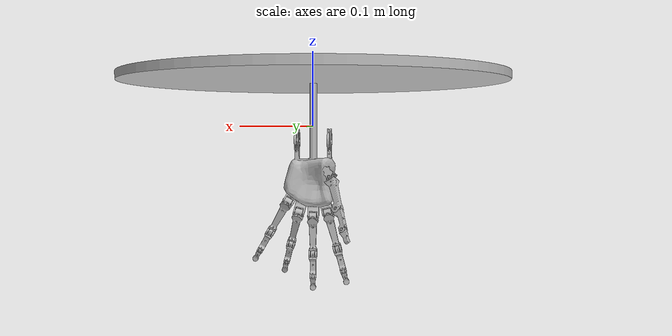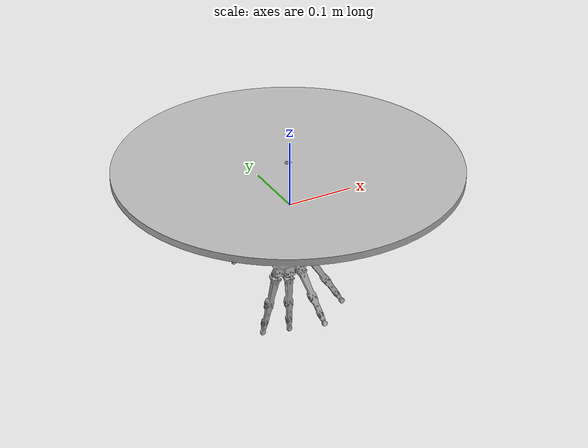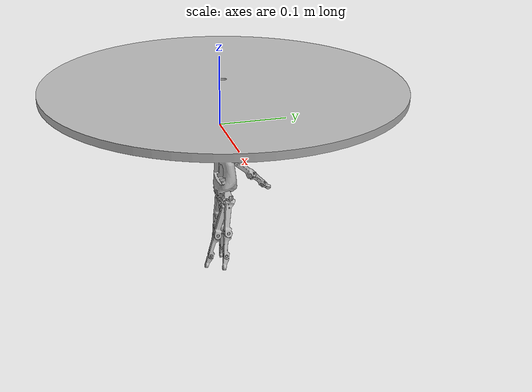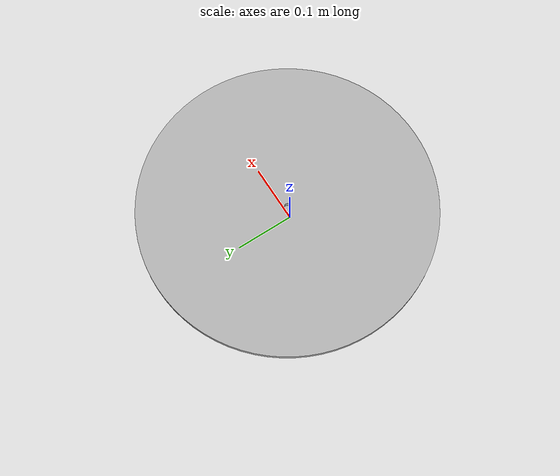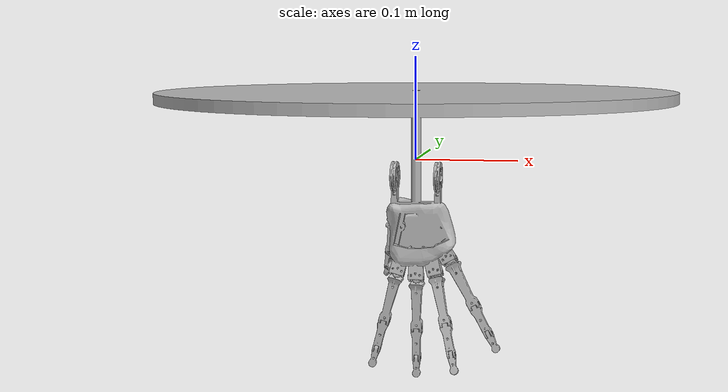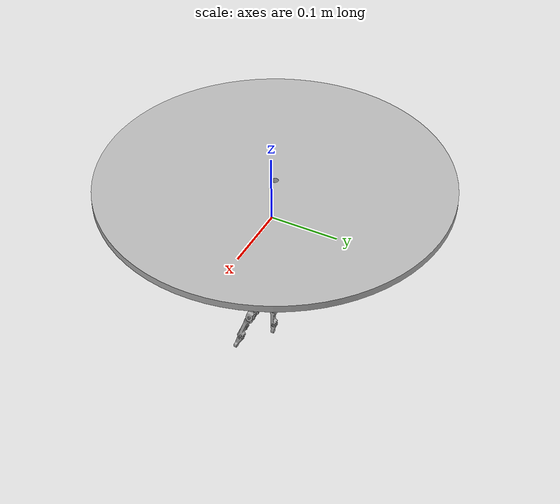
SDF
<?xml version="1.0" ?>
<sdf version="1.6">
	<model name="roboy_hand_left">
		<link name="palm">
			<pose frame="">-0.0005000000000004635 0.00500000000000008 0.06701500000000059 0.0 -0.0 0.0</pose>
			<inertial>
				<pose frame="">0.0 0.0 0.05 0 0 0</pose>
				<mass>15.51996490789225</mass>
				<inertia>
					<ixx>0.3009526854219939</ixx>
					<ixy>3.875011271603236e-05</ixy>
					<ixz>-0.004755703604050438</ixz>
					<iyy>0.30058453511478506</iyy>
					<iyz>0.000483734858635136</iyz>
					<izz>0.4820856721425655</izz>
				</inertia>
			</inertial>
			<collision name="palm_collision">
				<geometry>
					<box>
						<size>0.01 0.01 0.01</size>
					</box>
				</geometry>
			</collision>
			<visual name="palm_visual">
				<geometry>
					<mesh>
						<uri>model://roboy_hand_left/meshes/CAD/palm.stl</uri>
						<scale>0.001 0.001 0.001</scale>
					</mesh>
				</geometry>
			</visual>
		</link>
		<link name="ring_limb0">
			<pose frame="">0.018472005363350263 0.003071637170940513 -0.11378948793749274 0.0 -0.0 0.0</pose>
			<inertial>
				<pose frame="">0.0 0.0 0.0 0 0 0</pose>
				<mass>0.0004269863688298119</mass>
				<inertia>
					<ixx>5.705186481949896e-06</ixx>
					<ixy>-4.324087879365974e-08</ixy>
					<ixz>2.6419370768032266e-07</ixz>
					<iyy>5.847829902048446e-06</iyy>
					<iyz>9.311486939256469e-07</iyz>
					<izz>1.7250855397973193e-07</izz>
				</inertia>
			</inertial>
			<collision name="ring_limb0_collision">
				<geometry>
					<box>
						<size>0.01 0.01 0.01</size>
					</box>
				</geometry>
			</collision>
			<visual name="ring_limb0_visual">
				<geometry>
					<mesh>
						<uri>model://roboy_hand_left/meshes/CAD/ring_limb0.stl</uri>
						<scale>0.001 0.001 0.001</scale>
					</mesh>
				</geometry>
			</visual>
		</link>
		<link name="ring_limb1">
			<pose frame="">0.02221748182250485 -0.0046803127482647755 -0.12776779638161082 0.0 -0.0 0.0</pose>
			<inertial>
				<pose frame="">0.0 0.0 0.0 0 0 0</pose>
				<mass>0.003829362795661365</mass>
				<inertia>
					<ixx>7.339305240793013e-05</ixx>
					<ixy>4.533371497918739e-07</ixy>
					<ixz>-2.363350150902545e-06</ixz>
					<iyy>7.562026048771054e-05</iyy>
					<iyz>1.3267585012392855e-05</iyz>
					<izz>2.672490773992441e-06</izz>
				</inertia>
			</inertial>
			<collision name="ring_limb1_collision">
				<geometry>
					<box>
						<size>0.01 0.01 0.01</size>
					</box>
				</geometry>
			</collision>
			<visual name="ring_limb1_visual">
				<geometry>
					<mesh>
						<uri>model://roboy_hand_left/meshes/CAD/ring_limb1.stl</uri>
						<scale>0.001 0.001 0.001</scale>
					</mesh>
				</geometry>
			</visual>
		</link>
		<link name="ring_limb2">
			<pose frame="">0.03488093137814949 -0.023020668794906336 -0.17502843352236203 0.0 -0.0 0.0</pose>
			<inertial>
				<pose frame="">0.0 0.0 0.0 0 0 0</pose>
				<mass>0.0016247546846143858</mass>
				<inertia>
					<ixx>4.952114754535433e-05</ixx>
					<ixy>1.0349551422480927e-06</ixy>
					<ixz>-5.190824251251473e-06</ixz>
					<iyy>5.0888514110337416e-05</iyy>
					<iyz>9.727635364613639e-06</iyz>
					<izz>2.5202897538577803e-06</izz>
				</inertia>
			</inertial>
			<collision name="ring_limb2_collision">
				<geometry>
					<box>
						<size>0.01 0.01 0.01</size>
					</box>
				</geometry>
			</collision>
			<visual name="ring_limb2_visual">
				<geometry>
					<mesh>
						<uri>model://roboy_hand_left/meshes/CAD/ring_limb2.stl</uri>
						<scale>0.001 0.001 0.001</scale>
					</mesh>
				</geometry>
			</visual>
		</link>
		<link name="ring_limb3">
			<pose frame="">0.04112792235421852 -0.03180564351775972 -0.1983425212394759 0.0 -0.0 0.0</pose>
			<inertial>
				<pose frame="">0.0 0.0 0.0 0 0 0</pose>
				<mass>0.0006943747393556993</mass>
				<inertia>
					<ixx>2.7724203122667314e-05</ixx>
					<ixy>8.045563508278833e-07</ixy>
					<ixz>-3.880806904384716e-06</ixz>
					<iyy>2.8333380066827546e-05</iyy>
					<iyz>5.628302424917388e-06</iyz>
					<izz>1.7278764706781456e-06</izz>
				</inertia>
			</inertial>
			<collision name="ring_limb3_collision">
				<geometry>
					<box>
						<size>0.01 0.01 0.01</size>
					</box>
				</geometry>
			</collision>
			<visual name="ring_limb3_visual">
				<geometry>
					<mesh>
						<uri>model://roboy_hand_left/meshes/CAD/ring_limb3.stl</uri>
						<scale>0.001 0.001 0.001</scale>
					</mesh>
				</geometry>
			</visual>
		</link>
		<link name="little_limb0">
			<pose frame="">0.032847460998180485 0.0027018666706433337 -0.09974449675227083 0.0 -0.0 0.0</pose>
			<inertial>
				<pose frame="">0.0 0.0 0.0 0 0 0</pose>
				<mass>0.0004269776073880924</mass>
				<inertia>
					<ixx>4.3587181507729865e-06</ixx>
					<ixy>-7.493171975799082e-08</ixy>
					<ixz>2.2595565845173706e-07</ixz>
					<iyy>4.827445330536484e-06</iyy>
					<iyz>1.4402328836258688e-06</iyz>
					<izz>4.972716102336003e-07</izz>
				</inertia>
			</inertial>
			<collision name="little_limb0_collision">
				<geometry>
					<box>
						<size>0.01 0.01 0.01</size>
					</box>
				</geometry>
			</collision>
			<visual name="little_limb0_visual">
				<geometry>
					<mesh>
						<uri>model://roboy_hand_left/meshes/CAD/little_limb0.stl</uri>
						<scale>0.001 0.001 0.001</scale>
					</mesh>
				</geometry>
			</visual>
		</link>
		<link name="little_limb1">
			<pose frame="">0.04064629525812948 -0.0024193797751180628 -0.11325247393031126 0.0 -0.0 0.0</pose>
			<inertial>
				<pose frame="">0.0 0.0 0.0 0 0 0</pose>
				<mass>0.0038295299079018023</mass>
				<inertia>
					<ixx>5.7514966563489604e-05</ixx>
					<ixy>7.694280428314022e-08</ixy>
					<ixz>-1.1825753312420086e-07</ixz>
					<iyy>6.563626620741991e-05</iyy>
					<iyz>2.1607017637877393e-05</iyz>
					<izz>8.272843069058707e-06</izz>
				</inertia>
			</inertial>
			<collision name="little_limb1_collision">
				<geometry>
					<box>
						<size>0.01 0.01 0.01</size>
					</box>
				</geometry>
			</collision>
			<visual name="little_limb1_visual">
				<geometry>
					<mesh>
						<uri>model://roboy_hand_left/meshes/CAD/little_limb1.stl</uri>
						<scale>0.001 0.001 0.001</scale>
					</mesh>
				</geometry>
			</visual>
		</link>
		<link name="little_limb2">
			<pose frame="">0.06637433625508896 -0.011492475352193242 -0.1578147481162603 0.0 -0.0 0.0</pose>
			<inertial>
				<pose frame="">0.0 0.0 0.0 0 0 0</pose>
				<mass>0.0016247887224868569</mass>
				<inertia>
					<ixx>3.9530518940073905e-05</ixx>
					<ixy>8.192564325235761e-07</ixy>
					<ixz>-1.9460367247579703e-06</ixz>
					<iyy>4.6339503053612124e-05</iyy>
					<iyz>1.6500908905874478e-05</iyz>
					<izz>7.033957594461536e-06</izz>
				</inertia>
			</inertial>
			<collision name="little_limb2_collision">
				<geometry>
					<box>
						<size>0.01 0.01 0.01</size>
					</box>
				</geometry>
			</collision>
			<visual name="little_limb2_visual">
				<geometry>
					<mesh>
						<uri>model://roboy_hand_left/meshes/CAD/little_limb2.stl</uri>
						<scale>0.001 0.001 0.001</scale>
					</mesh>
				</geometry>
			</visual>
		</link>
		<link name="little_limb3">
			<pose frame="">0.07902199953737153 -0.015952723911357655 -0.17972114351819712 0.0 -0.0 0.0</pose>
			<inertial>
				<pose frame="">0.0 0.0 0.0 0 0 0</pose>
				<mass>0.0006943841369259128</mass>
				<inertia>
					<ixx>2.2278033154815552e-05</ixx>
					<ixy>7.108674911361065e-07</ixy>
					<ixz>-1.6182091500147892e-06</ixz>
					<iyy>2.6426415270328037e-05</iyy>
					<iyz>9.723352873713033e-06</iyz>
					<izz>4.391842749863641e-06</izz>
				</inertia>
			</inertial>
			<collision name="little_limb3_collision">
				<geometry>
					<box>
						<size>0.01 0.01 0.01</size>
					</box>
				</geometry>
			</collision>
			<visual name="little_limb3_visual">
				<geometry>
					<mesh>
						<uri>model://roboy_hand_left/meshes/CAD/little_limb3.stl</uri>
						<scale>0.001 0.001 0.001</scale>
					</mesh>
				</geometry>
			</visual>
		</link>
		<link name="thumb_limb0">
			<pose frame="">-0.026883411358947517 0.024831745878721112 -0.06517924675246232 0.0 -0.0 0.0</pose>
			<inertial>
				<pose frame="">0.0 0.0 0.0 0 0 0</pose>
				<mass>0.00042698698547690686</mass>
				<inertia>
					<ixx>2.1873459013763217e-06</ixx>
					<ixy>2.604144130385561e-07</ixy>
					<ixz>7.068430869983866e-07</ixz>
					<iyy>2.1860922722038068e-06</iyy>
					<iyz>-7.087151807390407e-07</iyz>
					<izz>5.295471093537582e-07</izz>
				</inertia>
			</inertial>
			<collision name="thumb_limb0_collision">
				<geometry>
					<box>
						<size>0.01 0.01 0.01</size>
					</box>
				</geometry>
			</collision>
			<visual name="thumb_limb0_visual">
				<geometry>
					<mesh>
						<uri>model://roboy_hand_left/meshes/CAD/thumb_limb0.stl</uri>
						<scale>0.001 0.001 0.001</scale>
					</mesh>
				</geometry>
			</visual>
		</link>
		<link name="thumb_limb1">
			<pose frame="">-0.03233854226006422 0.036699187501375255 -0.07525420288586396 0.0 -0.0 0.0</pose>
			<inertial>
				<pose frame="">0.0 0.0 0.0 0 0 0</pose>
				<mass>0.003829514276315409</mass>
				<inertia>
					<ixx>3.4666732521662505e-05</ixx>
					<ixy>4.969993692847451e-06</ixy>
					<ixz>1.3818308381149525e-05</ixz>
					<iyy>3.1204944872577974e-05</iyy>
					<iyz>-9.926992473371383e-06</iyz>
					<izz>1.0686989872298477e-05</izz>
				</inertia>
			</inertial>
			<collision name="thumb_limb1_collision">
				<geometry>
					<box>
						<size>0.01 0.01 0.01</size>
					</box>
				</geometry>
			</collision>
			<visual name="thumb_limb1_visual">
				<geometry>
					<mesh>
						<uri>model://roboy_hand_left/meshes/CAD/thumb_limb1.stl</uri>
						<scale>0.001 0.001 0.001</scale>
					</mesh>
				</geometry>
			</visual>
		</link>
		<link name="thumb_limb2">
			<pose frame="">-0.042524190210118995 0.07212248771054164 -0.11228786076143027 0.0 -0.0 0.0</pose>
			<inertial>
				<pose frame="">0.0 0.0 0.0 0 0 0</pose>
				<mass>0.0016247778058410792</mass>
				<inertia>
					<ixx>2.8198666887491993e-05</ixx>
					<ixy>4.35334602418317e-06</ixy>
					<ixz>1.2572145783390999e-05</ixz>
					<iyy>2.2896835264485645e-05</iyy>
					<iyz>-7.072129742863401e-06</iyz>
					<izz>1.0217118337392071e-05</izz>
				</inertia>
			</inertial>
			<collision name="thumb_limb2_collision">
				<geometry>
					<box>
						<size>0.01 0.01 0.01</size>
					</box>
				</geometry>
			</collision>
			<visual name="thumb_limb2_visual">
				<geometry>
					<mesh>
						<uri>model://roboy_hand_left/meshes/CAD/thumb_limb2.stl</uri>
						<scale>0.001 0.001 0.001</scale>
					</mesh>
				</geometry>
			</visual>
		</link>
		<link name="thumb_limb3">
			<pose frame="">-0.04753135906527549 0.08953624935083511 -0.13049325910391468 0.0 -0.0 0.0</pose>
			<inertial>
				<pose frame="">0.0 0.0 0.0 0 0 0</pose>
				<mass>0.0006943656467187072</mass>
				<inertia>
					<ixx>1.720303641669695e-05</ixx>
					<ixy>2.7106334825040876e-06</ixy>
					<ixz>7.94338100599065e-06</ixz>
					<iyy>1.3278497300311745e-05</iyy>
					<iyz>-4.056624081745959e-06</iyz>
					<izz>6.697438090106087e-06</izz>
				</inertia>
			</inertial>
			<collision name="thumb_limb3_collision">
				<geometry>
					<box>
						<size>0.01 0.01 0.01</size>
					</box>
				</geometry>
			</collision>
			<visual name="thumb_limb3_visual">
				<geometry>
					<mesh>
						<uri>model://roboy_hand_left/meshes/CAD/thumb_limb3.stl</uri>
						<scale>0.001 0.001 0.001</scale>
					</mesh>
				</geometry>
			</visual>
		</link>
		<link name="index_limb0">
			<pose frame="">-0.019678577469519704 0.0024019237886464583 -0.11456042553314168 0.0 -0.0 0.0</pose>
			<inertial>
				<pose frame="">0.0 0.0 0.0 0 0 0</pose>
				<mass>0.00042704116717113904</mass>
				<inertia>
					<ixx>5.696396315690572e-06</ixx>
					<ixy>4.352364376914467e-08</ixy>
					<ixz>2.5263332522883145e-07</ixz>
					<iyy>5.8565621584921474e-06</iyy>
					<iyz>-9.78686141948476e-07</iyz>
					<izz>1.8738275226371265e-07</izz>
				</inertia>
			</inertial>
			<collision name="index_limb0_collision">
				<geometry>
					<box>
						<size>0.01 0.01 0.01</size>
					</box>
				</geometry>
			</collision>
			<visual name="index_limb0_visual">
				<geometry>
					<mesh>
						<uri>model://roboy_hand_left/meshes/CAD/index_limb0.stl</uri>
						<scale>0.001 0.001 0.001</scale>
					</mesh>
				</geometry>
			</visual>
		</link>
		<link name="index_limb1">
			<pose frame="">-0.023884386952435454 6.69872981074187e-05 -0.13025672021033885 0.0 -0.0 0.0</pose>
			<inertial>
				<pose frame="">0.0 0.0 0.0 0 0 0</pose>
				<mass>0.0038295073751577835</mass>
				<inertia>
					<ixx>7.514124864687851e-05</ixx>
					<ixy>4.179435612897624e-07</ixy>
					<ixz>2.2276793050386756e-06</ixz>
					<iyy>7.777573780806882e-05</iyy>
					<iyz>-1.4224170064299924e-05</iyz>
					<izz>2.846316814929306e-06</izz>
				</inertia>
			</inertial>
			<collision name="index_limb1_collision">
				<geometry>
					<box>
						<size>0.01 0.01 0.01</size>
					</box>
				</geometry>
			</collision>
			<visual name="index_limb1_visual">
				<geometry>
					<mesh>
						<uri>model://roboy_hand_left/meshes/CAD/index_limb1.stl</uri>
						<scale>0.001 0.001 0.001</scale>
					</mesh>
				</geometry>
			</visual>
		</link>
		<link name="index_limb2">
			<pose frame="">-0.03740764970666212 6.698729810693583e-05 -0.18072622389321544 0.0 -0.0 0.0</pose>
			<inertial>
				<pose frame="">0.0 0.0 0.0 0 0 0</pose>
				<mass>0.0016247911690079721</mass>
				<inertia>
					<ixx>5.1403995710452656e-05</ixx>
					<ixy>2.028335248093986e-07</ixy>
					<ixz>9.888273079043263e-07</ixz>
					<iyy>5.356532861477446e-05</iyy>
					<iyz>-1.058469804368623e-05</iyz>
					<izz>2.221224794907888e-06</izz>
				</inertia>
			</inertial>
			<collision name="index_limb2_collision">
				<geometry>
					<box>
						<size>0.01 0.01 0.01</size>
					</box>
				</geometry>
			</collision>
			<visual name="index_limb2_visual">
				<geometry>
					<mesh>
						<uri>model://roboy_hand_left/meshes/CAD/index_limb2.stl</uri>
						<scale>0.001 0.001 0.001</scale>
					</mesh>
				</geometry>
			</visual>
		</link>
		<link name="index_limb3">
			<pose frame="">-0.04405555864825228 6.698729810680821e-05 -0.20553655782732164 0.0 -0.0 0.0</pose>
			<inertial>
				<pose frame="">0.0 0.0 0.0 0 0 0</pose>
				<mass>0.0006943833373514077</mass>
				<inertia>
					<ixx>2.8861067291193255e-05</ixx>
					<ixy>8.204909151039383e-08</ixy>
					<ixz>3.84310202223997e-07</ixz>
					<iyy>3.0175821782166436e-05</iyy>
					<iyz>-6.171778299680884e-06</iyz>
					<izz>1.3303596105165025e-06</izz>
				</inertia>
			</inertial>
			<collision name="index_limb3_collision">
				<geometry>
					<box>
						<size>0.01 0.01 0.01</size>
					</box>
				</geometry>
			</collision>
			<visual name="index_limb3_visual">
				<geometry>
					<mesh>
						<uri>model://roboy_hand_left/meshes/CAD/index_limb3.stl</uri>
						<scale>0.001 0.001 0.001</scale>
					</mesh>
				</geometry>
			</visual>
		</link>
		<link name="middle_limb0">
			<pose frame="">0.0 0.002401923788646685 -0.11975 0.0 -0.0 0.0</pose>
			<inertial>
				<pose frame="">0.0 0.0 0.0 0 0 0</pose>
				<mass>0.0004269894661254721</mass>
				<inertia>
					<ixx>6.2209312152551215e-06</ixx>
					<ixy>-2.9280517172793272e-12</ixy>
					<ixz>2.64016123673729e-07</ixz>
					<iyy>6.212418826825482e-06</iyy>
					<iyz>4.16501204766862e-11</iyz>
					<izz>1.8698194242482387e-08</izz>
				</inertia>
			</inertial>
			<collision name="middle_limb0_collision">
				<geometry>
					<box>
						<size>0.01 0.01 0.01</size>
					</box>
				</geometry>
			</collision>
			<visual name="middle_limb0_visual">
				<geometry>
					<mesh>
						<uri>model://roboy_hand_left/meshes/CAD/middle_limb0.stl</uri>
						<scale>0.001 0.001 0.001</scale>
					</mesh>
				</geometry>
			</visual>
		</link>
		<link name="middle_limb1">
			<pose frame="">0.0 -0.0004330127018922192 -0.136 0.0 -0.0 0.0</pose>
			<inertial>
				<pose frame="">0.0 0.0 0.0 0 0 0</pose>
				<mass>0.003829477216516549</mass>
				<inertia>
					<ixx>8.179745774594433e-05</ixx>
					<ixy>-1.010173023231431e-12</ixy>
					<ixz>2.324896654110321e-06</ixz>
					<iyy>8.172897134851703e-05</iyy>
					<iyz>1.5576257850015195e-11</iyz>
					<izz>1.4333886289467136e-07</izz>
				</inertia>
			</inertial>
			<collision name="middle_limb1_collision">
				<geometry>
					<box>
						<size>0.01 0.01 0.01</size>
					</box>
				</geometry>
			</collision>
			<visual name="middle_limb1_visual">
				<geometry>
					<mesh>
						<uri>model://roboy_hand_left/meshes/CAD/middle_limb1.stl</uri>
						<scale>0.001 0.001 0.001</scale>
					</mesh>
				</geometry>
			</visual>
		</link>
		<link name="middle_limb2">
			<pose frame="">0.0 -0.0004330127018922192 -0.18824987499999998 0.0 -0.0 0.0</pose>
			<inertial>
				<pose frame="">0.0 0.0 0.0 0 0 0</pose>
				<mass>0.0016247913530675348</mass>
				<inertia>
					<ixx>5.5779881831288704e-05</ixx>
					<ixy>1.1170535493735535e-12</ixy>
					<ixz>1.0301843374132322e-06</ixz>
					<iyy>5.575946760263578e-05</iyy>
					<iyz>-3.9783898797533366e-11</iyz>
					<izz>3.947765546601525e-08</izz>
				</inertia>
			</inertial>
			<collision name="middle_limb2_collision">
				<geometry>
					<box>
						<size>0.01 0.01 0.01</size>
					</box>
				</geometry>
			</collision>
			<visual name="middle_limb2_visual">
				<geometry>
					<mesh>
						<uri>model://roboy_hand_left/meshes/CAD/middle_limb2.stl</uri>
						<scale>0.001 0.001 0.001</scale>
					</mesh>
				</geometry>
			</visual>
		</link>
		<link name="middle_limb3">
			<pose frame="">7.35799333358205e-18 -0.00043301270189221864 -0.21393542275000002 0.0 -0.0 0.0</pose>
			<inertial>
				<pose frame="">0.0 0.0 0.0 0 0 0</pose>
				<mass>0.0006943748373823942</mass>
				<inertia>
					<ixx>3.1269426602180544e-05</ixx>
					<ixy>9.770606143560955e-14</ixy>
					<ixz>4.0004172461026313e-07</ixz>
					<iyy>3.1263854150134745e-05</iyy>
					<iyz>-3.760132469051969e-12</iyz>
					<izz>1.0032349759270512e-08</izz>
				</inertia>
			</inertial>
			<collision name="middle_limb3_collision">
				<geometry>
					<box>
						<size>0.01 0.01 0.01</size>
					</box>
				</geometry>
			</collision>
			<visual name="middle_limb3_visual">
				<geometry>
					<mesh>
						<uri>model://roboy_hand_left/meshes/CAD/middle_limb3.stl</uri>
						<scale>0.001 0.001 0.001</scale>
					</mesh>
				</geometry>
			</visual>
		</link>
		<joint name="joint0_ring" type="revolute">
			<parent>ring_limb0</parent>
			<child>ring_limb1</child>
			<pose frame="">-0.00374547645915448 0.007751949919205073 0.013978308444117432 0 0 0</pose>
			<axis>
				<xyz>-0.19826689127414987 -0.6427876096865459 0.7399421116938527</xyz>
				<limit>
					<lower>-0.3141592653589793</lower>
					<upper>0.3141592653589793</upper>
				</limit>
				<use_parent_model_frame>0</use_parent_model_frame>
			</axis>
		</joint>
		<joint name="joint1_ring" type="revolute">
			<parent>ring_limb1</parent>
			<child>ring_limb2</child>
			<pose frame="">-0.008686658600815802 0.010597836437099627 0.011168683067889838 0 0 0</pose>
			<axis>
				<xyz>0.9659258262890743 -1.0330413824713447e-15 0.2588190451025241</xyz>
				<limit>
					<lower>0.0</lower>
					<upper>1.9198621771937625</upper>
				</limit>
				<use_parent_model_frame>0</use_parent_model_frame>
			</axis>
		</joint>
		<joint name="joint2_ring" type="revolute">
			<parent>ring_limb2</parent>
			<child>ring_limb3</child>
			<pose frame="">-0.0058956751194361254 0.00711421818321992 0.006548145870029849 0 0 0</pose>
			<axis>
				<xyz>0.9659258262890743 -1.0330413824713447e-15 0.2588190451025241</xyz>
				<limit>
					<lower>0.0</lower>
					<upper>1.2217304763960306</upper>
				</limit>
				<use_parent_model_frame>0</use_parent_model_frame>
			</axis>
		</joint>
		<joint name="joint0_index" type="revolute">
			<parent>index_limb0</parent>
			<child>index_limb1</child>
			<pose frame="">0.004205809482915721 0.002334936490539062 0.01569629467719718 0 0 0</pose>
			<axis>
				<xyz>0.12940952255125512 -0.866025403784444 0.48296291314453815</xyz>
				<limit>
					<lower>-0.3141592653589793</lower>
					<upper>0.3141592653589793</upper>
				</limit>
				<use_parent_model_frame>0</use_parent_model_frame>
			</axis>
		</joint>
		<joint name="joint1_index" type="revolute">
			<parent>index_limb1</parent>
			<child>index_limb2</child>
			<pose frame="">-0.0012038720559680227 0.004999999999999989 0.016757456499674604 0 0 0</pose>
			<axis>
				<xyz>0.9659258262890686 -1.2698175844150228e-15 -0.25881904510251696</xyz>
				<limit>
					<lower>0.0</lower>
					<upper>1.9198621771937625</upper>
				</limit>
				<use_parent_model_frame>0</use_parent_model_frame>
			</axis>
		</joint>
		<joint name="joint2_index" type="revolute">
			<parent>index_limb2</parent>
			<child>index_limb3</child>
			<pose frame="">-0.0013245143521879489 0.00350000000000005 0.010511658362905508 0 0 0</pose>
			<axis>
				<xyz>0.9659258262890686 -1.2698175844150228e-15 -0.25881904510251696</xyz>
				<limit>
					<lower>0.0</lower>
					<upper>1.2217304763960306</upper>
				</limit>
				<use_parent_model_frame>0</use_parent_model_frame>
			</axis>
		</joint>
		<joint name="joint0_thumb" type="revolute">
			<parent>thumb_limb0</parent>
			<child>thumb_limb1</child>
			<pose frame="">0.005455130901116627 -0.011867441622654079 0.010074956133401659 0 0 0</pose>
			<axis>
				<xyz>-0.6012727519776039 -0.07913595016165592 0.7951154501840055</xyz>
				<limit>
					<lower>-0.3141592653589793</lower>
					<upper>0.3141592653589793</upper>
				</limit>
				<use_parent_model_frame>0</use_parent_model_frame>
			</axis>
		</joint>
		<joint name="joint1_thumb" type="revolute">
			<parent>thumb_limb1</parent>
			<child>thumb_limb2</child>
			<pose frame="">0.010599528342267161 -0.008721822935578976 0.011139634637972087 0 0 0</pose>
			<axis>
				<xyz>-0.557681242973788 -0.6710780983723593 -0.4885138863125139</xyz>
				<limit>
					<lower>0.0</lower>
					<upper>1.9198621771937625</upper>
				</limit>
				<use_parent_model_frame>0</use_parent_model_frame>
			</axis>
		</joint>
		<joint name="joint2_thumb" type="revolute">
			<parent>thumb_limb2</parent>
			<child>thumb_limb3</child>
			<pose frame="">0.007370585340960041 -0.005167093751348606 0.006872038540636254 0 0 0</pose>
			<axis>
				<xyz>-0.557681242973788 -0.6710780983723593 -0.4885138863125139</xyz>
				<limit>
					<lower>0.0</lower>
					<upper>1.2217304763960306</upper>
				</limit>
				<use_parent_model_frame>0</use_parent_model_frame>
			</axis>
		</joint>
		<joint name="joint0_little" type="revolute">
			<parent>little_limb0</parent>
			<child>little_limb1</child>
			<pose frame="">-0.007798834259948531 0.005121246445761396 0.013507977178040491 0 0 0</pose>
			<axis>
				<xyz>-0.32139380484327207 -0.7660444431189839 0.5566703992264193</xyz>
				<limit>
					<lower>-0.3141592653589793</lower>
					<upper>0.3141592653589793</upper>
				</limit>
				<use_parent_model_frame>0</use_parent_model_frame>
			</axis>
		</joint>
		<joint name="joint1_little" type="revolute">
			<parent>little_limb1</parent>
			<child>little_limb2</child>
			<pose frame="">-0.012145869265696945 0.007680681879501461 0.010037262670276378 0 0 0</pose>
			<axis>
				<xyz>0.8660254037844415 -6.110346603693806e-15 0.49999999999999345</xyz>
				<limit>
					<lower>0.0</lower>
					<upper>1.9198621771937625</upper>
				</limit>
				<use_parent_model_frame>0</use_parent_model_frame>
			</axis>
		</joint>
		<joint name="joint2_little" type="revolute">
			<parent>little_limb2</parent>
			<child>little_limb3</child>
			<pose frame="">-0.00799103059745339 0.005150432580266886 0.005840870999626802 0 0 0</pose>
			<axis>
				<xyz>0.8660254037844415 -6.110346603693806e-15 0.49999999999999345</xyz>
				<limit>
					<lower>0.0</lower>
					<upper>1.2217304763960306</upper>
				</limit>
				<use_parent_model_frame>0</use_parent_model_frame>
			</axis>
		</joint>
		<joint name="palm_ring" type="revolute">
			<parent>palm</parent>
			<child>ring_limb0</child>
			<pose frame="">-0.0066496430233454066 0.0019283628290595017 -0.004160969173350555 0 0 0</pose>
			<axis>
				<xyz>-0.9659258262890762 -4.904700770684754e-16 -0.25881904510252224</xyz>
				<limit>
					<lower>-0.3490658503988659</lower>
					<upper>1.2217304763960306</upper>
				</limit>
				<use_parent_model_frame>0</use_parent_model_frame>
			</axis>
		</joint>
		<joint name="palm_index" type="revolute">
			<parent>palm</parent>
			<child>index_limb0</child>
			<pose frame="">-0.0076326722648214895 0.0025980762113535344 0.0004922540988361312 0 0 0</pose>
			<axis>
				<xyz>-0.9659258262890775 -5.479394496853379e-16 0.2588190451025223</xyz>
				<limit>
					<lower>-0.3490658503988659</lower>
					<upper>1.2217304763960306</upper>
				</limit>
				<use_parent_model_frame>0</use_parent_model_frame>
			</axis>
		</joint>
		<joint name="palm_thumb" type="revolute">
			<parent>palm</parent>
			<child>thumb_limb0</child>
			<pose frame="">0.004455468685382753 0.00673259837886818 0.00026630407889820517 0 0 0</pose>
			<axis>
				<xyz>0.3535533905932764 0.8660254037844375 0.3535533905932753</xyz>
				<limit>
					<lower>-0.3490658503988659</lower>
					<upper>1.2217304763960306</upper>
				</limit>
				<use_parent_model_frame>0</use_parent_model_frame>
			</axis>
		</joint>
		<joint name="palm_little" type="revolute">
			<parent>palm</parent>
			<child>little_limb0</child>
			<pose frame="">-0.0055310091138529895 0.0022981333293566886 -0.0054200111976790135 0 0 0</pose>
			<axis>
				<xyz>0.866025403784445 4.0999510464529535e-16 0.5000000000000029</xyz>
				<limit>
					<lower>-0.3490658503988659</lower>
					<upper>1.2217304763960306</upper>
				</limit>
				<use_parent_model_frame>0</use_parent_model_frame>
			</axis>
		</joint>
		<joint name="palm_middle" type="revolute">
			<parent>palm</parent>
			<child>middle_limb0</child>
			<pose frame="">0.004999999999999992 0.0025980762113533276 -0.0014999999999999504 0 0 0</pose>
			<axis>
				<xyz>-1.0000000000000089 9.930890339105123e-17 -1.4559772246072405e-17</xyz>
				<limit>
					<lower>-0.3490658503988659</lower>
					<upper>1.2217304763960306</upper>
				</limit>
				<use_parent_model_frame>0</use_parent_model_frame>
			</axis>
		</joint>
		<joint name="joint0_middle" type="revolute">
			<parent>middle_limb0</parent>
			<child>middle_limb1</child>
			<pose frame="">-7.364001080218429e-18 0.002834936490538918 0.016250000000000035 0 0 0</pose>
			<axis>
				<xyz>-1.468342181063722e-17 -0.8660254037844379 0.49999999999999933</xyz>
				<limit>
					<lower>-0.6108652381980153</lower>
					<upper>0.6108652381980153</upper>
				</limit>
				<use_parent_model_frame>0</use_parent_model_frame>
			</axis>
		</joint>
		<joint name="joint1_middle" type="revolute">
			<parent>middle_limb1</parent>
			<child>middle_limb2</child>
			<pose frame="">-0.005500000000000008 0.005500000000000024 0.015874874999999875 0 0 0</pose>
			<axis>
				<xyz>1.0 -3.720545412927922e-18 2.292266993421628e-17</xyz>
				<limit>
					<lower>0.0</lower>
					<upper>1.9198621771937625</upper>
				</limit>
				<use_parent_model_frame>0</use_parent_model_frame>
			</axis>
		</joint>
		<joint name="joint2_middle" type="revolute">
			<parent>middle_limb2</parent>
			<child>middle_limb3</child>
			<pose frame="">-0.004000000000000013 0.004000000000000026 0.009810672749999902 0 0 0</pose>
			<axis>
				<xyz>1.0 -3.720545412927922e-18 2.292266993421628e-17</xyz>
				<limit>
					<lower>0.0</lower>
					<upper>1.2217304763960306</upper>
				</limit>
				<use_parent_model_frame>0</use_parent_model_frame>
			</axis>
		</joint>
		<plugin filename="libmusc_plugin.so" name="musc_plugin">
			<myoMuscle name="motor0">
				<link name="palm">
					<viaPoint type="FIXPOINT">1.8145207558717404e-16 3.3306690738754695e-17 -0.11100000000000002</viaPoint>
					<viaPoint type="FIXPOINT">0.02226529282101398 -0.0033690340480379516 -0.15231303418611092</viaPoint>
				</link>
				<link name="little_limb3">
					<viaPoint type="FIXPOINT">-0.0028261037675905245 0.007802083009715859 0.005760980716713711</viaPoint>
					<viaPoint type="FIXPOINT">-0.0005334600786953115 0.006534543134295307 0.000923979960110266</viaPoint>
					<viaPoint type="FIXPOINT">1.1546319456101628e-16 -3.4861002973229917e-16 3.552713678800501e-17</viaPoint>
				</link>
				<link name="palm">
					<viaPoint type="FIXPOINT">0.031568806167982556 -0.0075658229487024645 -0.15979903091337386</viaPoint>
					<viaPoint type="FIXPOINT">0.030162187633122204 -0.006927458925629264 -0.16224244144799294</viaPoint>
				</link>
				<link name="little_limb1">
					<viaPoint type="FIXPOINT">-0.005502819646581605 0.0128604762697856 0.009531163212767525</viaPoint>
					<viaPoint type="FIXPOINT">-0.0018466027961628973 0.010652056083185518 0.001199807741102461</viaPoint>
					<viaPoint type="FIXPOINT">0.013416160111525998 0.001838615246005764 -0.023237470955641906</viaPoint>
				</link>
				<link name="little_limb2">
					<viaPoint type="FIXPOINT">-0.0044203480185374035 0.009915682302168273 0.008963144929495464</viaPoint>
					<viaPoint type="FIXPOINT">-0.0022433194173471184 0.008671576436547463 0.0054855432084512405</viaPoint>
					<viaPoint type="FIXPOINT">0.0057870704420560064 0.0037014603119450763 -0.010447020499459433</viaPoint>
				</link>
			</myoMuscle>
			<myoMuscle name="motor1">
				<link name="palm">
					<viaPoint type="FIXPOINT">1.8145207558717404e-16 3.3306690738754695e-17 -0.11100000000000002</viaPoint>
					<viaPoint type="FIXPOINT">0.02532056179499127 -0.003301693253858743 -0.15010808373039528</viaPoint>
					<viaPoint type="FIXPOINT">0.027284688003605857 -0.00733831843439983 -0.16221481604522808</viaPoint>
					<viaPoint type="FIXPOINT">0.03171116784981646 -0.005561634055162429 -0.16492535388322632</viaPoint>
				</link>
				<link name="little_limb1">
					<viaPoint type="FIXPOINT">-0.005502819646581605 0.0128604762697856 0.009531163212767525</viaPoint>
					<viaPoint type="FIXPOINT">0.00011915408541947948 0.009968996052965811 0.00152533442947151</viaPoint>
					<viaPoint type="FIXPOINT">0.015525269176764694 0.0020783836659209677 -0.026890555015339396</viaPoint>
					<viaPoint type="FIXPOINT">0.016215659701965892 -0.005134903745539392 -0.02758930805463903</viaPoint>
				</link>
				<link name="little_limb2">
					<viaPoint type="FIXPOINT">7.105427357601002e-17 -4.4408920985006264e-17 8.881784197001253e-17</viaPoint>
				</link>
			</myoMuscle>
			<myoMuscle name="motor5">
				<link name="palm">
					<viaPoint type="FIXPOINT">1.8145207558717404e-16 3.3306690738754695e-17 -0.11100000000000002</viaPoint>
					<viaPoint type="FIXPOINT">0.015957814742468834 -0.00320056022257781 -0.16231012550633567</viaPoint>
				</link>
				<link name="ring_limb3">
					<viaPoint type="FIXPOINT">-0.0011839232146931477 0.009408523928624494 0.004418461589496197</viaPoint>
					<viaPoint type="FIXPOINT">6.60015316486362e-05 0.007090383792487565 -0.00024632106948896393</viaPoint>
					<viaPoint type="FIXPOINT">0.0002791396555907788 0.005886993991973011 -0.0010417633770719804</viaPoint>
				</link>
				<link name="palm">
					<viaPoint type="FIXPOINT">0.013787696145810185 -0.006513651702942164 -0.1710720330815427</viaPoint>
					<viaPoint type="FIXPOINT">0.017643034057716663 -0.006927458925629269 -0.1758446995030657</viaPoint>
				</link>
				<link name="ring_limb1">
					<viaPoint type="FIXPOINT">-0.0019358559415041032 0.014292667482506656 0.009823505029110198</viaPoint>
					<viaPoint type="FIXPOINT">0.0009628806237346188 0.010036584643664326 -0.0002481022306507974</viaPoint>
					<viaPoint type="FIXPOINT">0.006921843387450757 -0.002848700960235292 -0.02583267120400068</viaPoint>
				</link>
				<link name="ring_limb2">
					<viaPoint type="FIXPOINT">-0.0019365665562259783 0.012086045946439146 0.00722736478007409</viaPoint>
					<viaPoint type="FIXPOINT">-0.0002900357787766028 0.010029392646526256 0.004173390906532113</viaPoint>
					<viaPoint type="FIXPOINT">0.0032608525711716263 0.0029836110831791365 -0.012169667471604093</viaPoint>
				</link>
			</myoMuscle>
			<myoMuscle name="motor6">
				<link name="palm">
					<viaPoint type="FIXPOINT">1.8145207558717404e-16 3.3306690738754695e-17 -0.11100000000000002</viaPoint>
					<viaPoint type="FIXPOINT">0.012394858008525165 -0.0032412106914203953 -0.16350348973074538</viaPoint>
					<viaPoint type="FIXPOINT">0.013787696145810185 -0.006513651702942164 -0.1710720330815427</viaPoint>
					<viaPoint type="FIXPOINT">0.017643034057716663 -0.006927458925629269 -0.1758446995030657</viaPoint>
				</link>
				<link name="ring_limb1">
					<viaPoint type="FIXPOINT">-0.0019358559415041032 0.014292667482506656 0.009823505029110198</viaPoint>
					<viaPoint type="FIXPOINT">0.0009628806237346188 0.010036584643664326 -0.0002481022306507974</viaPoint>
					<viaPoint type="FIXPOINT">0.006921843387450757 -0.002848700960235292 -0.02583267120400068</viaPoint>
					<viaPoint type="FIXPOINT">0.008117145324506768 -0.0114149222834945 -0.03029359876347959</viaPoint>
				</link>
				<link name="ring_limb2">
					<viaPoint type="FIXPOINT">4.426066345079249e-05 0.0004698463103929429 -0.00016518304477536105</viaPoint>
				</link>
			</myoMuscle>
			<myoMuscle name="motor2">
				<link name="palm">
					<viaPoint type="FIXPOINT">1.8145207558717404e-16 3.3306690738754695e-17 -0.11100000000000002</viaPoint>
					<viaPoint type="FIXPOINT">0.02566051646875417 0.0007658038574664039 -0.1498627425773837</viaPoint>
					<viaPoint type="FIXPOINT">0.027368311421553666 0.0017658038608826944 -0.16240330589949792</viaPoint>
				</link>
				<link name="little_limb1">
					<viaPoint type="FIXPOINT">-0.0062961694273624145 0.0013516207491471263 0.009088133675752275</viaPoint>
					<viaPoint type="FIXPOINT">-0.002198840794060475 -0.00019493494090579071 0.005746501231546333</viaPoint>
					<viaPoint type="FIXPOINT">1.0658141036401502e-16 -1.2129186544029835e-16 -2.3092638912203257e-16</viaPoint>
				</link>
			</myoMuscle>
			<myoMuscle name="motor4">
				<link name="palm">
					<viaPoint type="FIXPOINT">1.8145207558717404e-16 3.3306690738754695e-17 -0.11100000000000002</viaPoint>
					<viaPoint type="FIXPOINT">0.02532056179499127 -0.003301693253858743 -0.15010808373039528</viaPoint>
					<viaPoint type="FIXPOINT">0.027284688003605857 -0.00733831843439983 -0.16221481604522808</viaPoint>
					<viaPoint type="FIXPOINT">0.027182082521894996 -0.007250845854711426 -0.16608074798345182</viaPoint>
				</link>
				<link name="little_limb1">
					<viaPoint type="FIXPOINT">-0.0038662520342127803 0.005160241475985502 0.0066965449581229035</viaPoint>
					<viaPoint type="FIXPOINT">0.0023127694616031837 0.0038641647286001756 0.006691305392851739</viaPoint>
					<viaPoint type="FIXPOINT">0.0038905430224981164 0.004605283066221691 0.002481061704853396</viaPoint>
				</link>
			</myoMuscle>
			<myoMuscle name="motor3">
				<link name="palm">
					<viaPoint type="FIXPOINT">1.8145207558717404e-16 3.3306690738754695e-17 -0.11100000000000002</viaPoint>
					<viaPoint type="FIXPOINT">0.02226529282101398 -0.0033690340480379516 -0.15231303418611092</viaPoint>
					<viaPoint type="FIXPOINT">0.031568806167982556 -0.0075658229487024645 -0.15979903091337386</viaPoint>
					<viaPoint type="FIXPOINT">0.03497631115595504 -0.00725084585471143 -0.16158074798345187</viaPoint>
				</link>
				<link name="little_limb1">
					<viaPoint type="FIXPOINT">-0.0038662520342127803 0.005160241475985502 0.0066965449581229035</viaPoint>
					<viaPoint type="FIXPOINT">-0.006951225185491064 0.003864164728600236 0.0013427355895806769</viaPoint>
					<viaPoint type="FIXPOINT">-0.0040939339760088875 0.004605283066221744 -0.002128778239572942</viaPoint>
				</link>
			</myoMuscle>
			<myoMuscle name="motor10">
				<link name="palm">
					<viaPoint type="FIXPOINT">1.8145207558717404e-16 3.3306690738754695e-17 -0.11100000000000002</viaPoint>
					<viaPoint type="FIXPOINT">0.0018757853456375067 -0.003252935610497684 -0.1676158220494676</viaPoint>
				</link>
				<link name="middle_limb3">
					<viaPoint type="FIXPOINT">-7.436018971222474e-18 0.0072766081771559145 0.007516367004595779</viaPoint>
					<viaPoint type="FIXPOINT">0.000495409202954531 0.006682400283817507 0.0021854227499999725</viaPoint>
					<viaPoint type="FIXPOINT">-1.2246467991473556e-19 0.005900837918690674 0.0010000000000000143</viaPoint>
				</link>
				<link name="palm">
					<viaPoint type="FIXPOINT">-0.0024831413282989513 -0.006386220544639457 -0.1741988818740454</viaPoint>
					<viaPoint type="FIXPOINT">2.593064651890131e-16 -0.007169862802135386 -0.18031227905388142</viaPoint>
				</link>
				<link name="middle_limb1">
					<viaPoint type="FIXPOINT">1.3101464699074886e-18 0.011253987530597108 0.013071637170940384</viaPoint>
					<viaPoint type="FIXPOINT">0.0008658576796737368 0.010098504561753712 0.0029733357998044775</viaPoint>
					<viaPoint type="FIXPOINT">1.6653345369377347e-18 0.006970066058381765 -0.026105404800067743</viaPoint>
				</link>
				<link name="middle_limb2">
					<viaPoint type="FIXPOINT">-5.551115123125783e-18 0.00879806450901851 0.01116475074533831</viaPoint>
					<viaPoint type="FIXPOINT">0.0007999999999999868 0.0080201250749671 0.00728886980620267</viaPoint>
					<viaPoint type="FIXPOINT">-0.0006000000000000017 0.007112777768298115 -0.01081870109462347</viaPoint>
				</link>
			</myoMuscle>
			<myoMuscle name="motor11">
				<link name="palm">
					<viaPoint type="FIXPOINT">1.8145207558717404e-16 3.3306690738754695e-17 -0.11100000000000002</viaPoint>
					<viaPoint type="FIXPOINT">0.0018757853456375067 -0.003252935610497684 -0.1676158220494676</viaPoint>
					<viaPoint type="FIXPOINT">-0.0024831413282989513 -0.006386220544639457 -0.1741988818740454</viaPoint>
					<viaPoint type="FIXPOINT">2.593064651890131e-16 -0.007169862802135386 -0.18031227905388142</viaPoint>
				</link>
				<link name="middle_limb1">
					<viaPoint type="FIXPOINT">1.3101464699074886e-18 0.011253987530597108 0.013071637170940384</viaPoint>
					<viaPoint type="FIXPOINT">0.0008658576796737368 0.010098504561753712 0.0029733357998044775</viaPoint>
					<viaPoint type="FIXPOINT">1.6653345369377347e-18 0.006970066058381765 -0.026105404800067743</viaPoint>
					<viaPoint type="FIXPOINT">4.163336342344347e-19 0.0005 -0.033375</viaPoint>
				</link>
				<link name="middle_limb2">
					<viaPoint type="FIXPOINT">0.0 0.0005 0.0</viaPoint>
				</link>
			</myoMuscle>
			<myoMuscle name="motor15">
				<link name="palm">
					<viaPoint type="FIXPOINT">1.820071870994866e-16 3.3306690738754695e-17 -0.11170638024946719</viaPoint>
					<viaPoint type="FIXPOINT">-0.011930992418085299 -0.005000000000000106 -0.16418615555013044</viaPoint>
				</link>
				<link name="index_limb3">
					<viaPoint type="FIXPOINT">0.001945378930769568 0.006776608177155954 0.007260253009606075</viaPoint>
					<viaPoint type="FIXPOINT">0.0010441575730154007 0.00618240028381752 0.0019827349387409755</viaPoint>
					<viaPoint type="FIXPOINT">0.00025881904510253404 0.005400837918690679 0.0009659258262890802</viaPoint>
				</link>
				<link name="palm">
					<viaPoint type="FIXPOINT">-0.01908829565141829 -0.006782565869002744 -0.17160288406020552</viaPoint>
					<viaPoint type="FIXPOINT">-0.017643034057716212 -0.0069274589256292885 -0.17584469950306575</viaPoint>
				</link>
				<link name="index_limb1">
					<viaPoint type="FIXPOINT">0.004344529995115904 0.01001399668589093 0.013615214377497367</viaPoint>
					<viaPoint type="FIXPOINT">0.0016059102271620597 0.009598504561753733 0.0026479213814130987</viaPoint>
					<viaPoint type="FIXPOINT">-0.006756575942368919 0.006470066058381319 -0.02521588470211695</viaPoint>
				</link>
				<link name="index_limb2">
					<viaPoint type="FIXPOINT">0.0028896501267161056 0.008298064509018568 0.01078432108900241</viaPoint>
					<viaPoint type="FIXPOINT">0.0026592389841492104 0.0075201250749671366 0.0068334523541877705</viaPoint>
					<viaPoint type="FIXPOINT">-0.0033853301044991027 0.005472921130302176 -0.01114758885772943</viaPoint>
				</link>
			</myoMuscle>
			<myoMuscle name="motor16">
				<link name="palm">
					<viaPoint type="FIXPOINT">1.820071870994866e-16 3.3306690738754695e-17 -0.11170638024946719</viaPoint>
					<viaPoint type="FIXPOINT">-0.011930992418085299 -0.005000000000000106 -0.16418615555013044</viaPoint>
					<viaPoint type="FIXPOINT">-0.01908829565141829 -0.006782565869002744 -0.17160288406020552</viaPoint>
					<viaPoint type="FIXPOINT">-0.017643034057716212 -0.0069274589256292885 -0.17584469950306575</viaPoint>
				</link>
				<link name="index_limb1">
					<viaPoint type="FIXPOINT">0.004344529995115904 0.01001399668589093 0.013615214377497367</viaPoint>
					<viaPoint type="FIXPOINT">0.0016059102271620597 0.009598504561753733 0.0026479213814130987</viaPoint>
					<viaPoint type="FIXPOINT">-0.006756575942368919 0.006470066058381319 -0.02521588470211695</viaPoint>
					<viaPoint type="FIXPOINT">-0.008638085630297252 -4.867634073590921e-16 -0.03223777445239856</viaPoint>
				</link>
				<link name="index_limb2">
					<viaPoint type="FIXPOINT">0.0 0.0 0.0</viaPoint>
				</link>
			</myoMuscle>
			<myoMuscle name="motor20">
				<link name="palm">
					<viaPoint type="FIXPOINT">1.8145207558717404e-16 3.3306690738754695e-17 -0.11100000000000002</viaPoint>
					<viaPoint type="FIXPOINT">-0.01563384098737012 0.012830438450999243 -0.11884435002602736</viaPoint>
				</link>
				<link name="thumb_limb3">
					<viaPoint type="FIXPOINT">0.007336302024377162 -0.007279079095836672 0.0016243397536567627</viaPoint>
					<viaPoint type="FIXPOINT">0.005872193748669314 -0.0035069102255827467 -0.0018861319794791598</viaPoint>
					<viaPoint type="FIXPOINT">0.0050534393761260165 -0.002787437237802006 -0.00193980211872109</viaPoint>
				</link>
				<link name="palm">
					<viaPoint type="FIXPOINT">-0.02290524209139361 0.011455164417186364 -0.12326343685747387</viaPoint>
					<viaPoint type="FIXPOINT">-0.02492635291123462 0.01635271165150925 -0.12512944654582767</viaPoint>
				</link>
				<link name="thumb_limb1">
					<viaPoint type="FIXPOINT">0.011628358319804036 -0.012238707405647435 0.003537690983218846</viaPoint>
					<viaPoint type="FIXPOINT">0.008244622756163476 -0.0056268327984135965 -0.003454732688770257</viaPoint>
					<viaPoint type="FIXPOINT">0.0005347067281732309 0.015607096645607816 -0.022050093052935475</viaPoint>
				</link>
				<link name="thumb_limb2">
					<viaPoint type="FIXPOINT">0.009275092661936598 -0.010209036065270486 0.003435962316570347</viaPoint>
					<viaPoint type="FIXPOINT">0.007445707104107955 -0.007884793822011718 0.000693903000496583</viaPoint>
					<viaPoint type="FIXPOINT">0.003629858929034029 0.005200510852564806 -0.011287812542014813</viaPoint>
				</link>
			</myoMuscle>
			<myoMuscle name="motor21">
				<link name="palm">
					<viaPoint type="FIXPOINT">1.8145207558717404e-16 3.3306690738754695e-17 -0.11100000000000002</viaPoint>
					<viaPoint type="FIXPOINT">-0.01563384098737012 0.012830438450999243 -0.11884435002602736</viaPoint>
					<viaPoint type="FIXPOINT">-0.02290524209139361 0.011455164417186364 -0.12326343685747387</viaPoint>
					<viaPoint type="FIXPOINT">-0.02492635291123462 0.01635271165150925 -0.12512944654582767</viaPoint>
				</link>
				<link name="thumb_limb1">
					<viaPoint type="FIXPOINT">0.011628358319804036 -0.012238707405647435 0.003537690983218846</viaPoint>
					<viaPoint type="FIXPOINT">0.008244622756163476 -0.0056268327984135965 -0.003454732688770257</viaPoint>
					<viaPoint type="FIXPOINT">0.0005347067281732309 0.015607096645607816 -0.022050093052935475</viaPoint>
					<viaPoint type="FIXPOINT">-0.006102739479396573 0.022476878108039822 -0.02390998005777018</viaPoint>
				</link>
				<link name="thumb_limb2">
					<viaPoint type="FIXPOINT">-1.5987211554602254e-16 -7.993605777301127e-17 -1.4210854715202004e-16</viaPoint>
				</link>
			</myoMuscle>
			<myoMuscle name="motor7">
				<link name="palm">
					<viaPoint type="FIXPOINT">1.8145207558717404e-16 3.3306690738754695e-17 -0.11100000000000002</viaPoint>
					<viaPoint type="FIXPOINT">0.01635309666031115 0.0007658038574663994 -0.16217773116799997</viaPoint>
					<viaPoint type="FIXPOINT">0.01400311949280837 0.001765803857421646 -0.17191961167450828</viaPoint>
				</link>
				<link name="ring_limb1">
					<viaPoint type="FIXPOINT">-0.0037501673653407798 0.0027379286657801183 0.01015771052530699</viaPoint>
					<viaPoint type="FIXPOINT">-0.0024934445668247894 0.0008631192152232203 0.005561738602762461</viaPoint>
					<viaPoint type="FIXPOINT">-4.4408920985006264e-17 1.6653345369377347e-17 -3.730349362740526e-16</viaPoint>
				</link>
			</myoMuscle>
			<myoMuscle name="motor12">
				<link name="palm">
					<viaPoint type="FIXPOINT">1.8145207558717404e-16 3.3306690738754695e-17 -0.11100000000000002</viaPoint>
					<viaPoint type="FIXPOINT">0.0022912878474782607 0.0007658038574663939 -0.16761582204946757</viaPoint>
					<viaPoint type="FIXPOINT">-0.0025010486031992437 0.0017658038574663959 -0.1745695100941518</viaPoint>
				</link>
				<link name="middle_limb1">
					<viaPoint type="FIXPOINT">-0.0009933745725011723 -0.0006149215328305063 0.011068389616256074</viaPoint>
					<viaPoint type="FIXPOINT">-0.0009689986292392762 -0.0007470660974970134 0.005949877702775357</viaPoint>
					<viaPoint type="FIXPOINT">0.0 0.0005 0.0</viaPoint>
				</link>
			</myoMuscle>
			<myoMuscle name="motor17">
				<link name="palm">
					<viaPoint type="FIXPOINT">1.8145207558717404e-16 3.3306690738754695e-17 -0.11100000000000002</viaPoint>
					<viaPoint type="FIXPOINT">-0.01212922987806607 0.0007658038574663861 -0.16411975859099104</viaPoint>
					<viaPoint type="FIXPOINT">-0.014662245457837933 0.0017658038574663905 -0.1744749206488238</viaPoint>
				</link>
				<link name="index_limb1">
					<viaPoint type="FIXPOINT">0.0019051838765441788 -0.0011149215328304057 0.010948347644055244</viaPoint>
					<viaPoint type="FIXPOINT">0.0006039608638881155 -0.0012470660974969556 0.00599793583629749</viaPoint>
					<viaPoint type="FIXPOINT">0.0 0.0 0.0</viaPoint>
				</link>
			</myoMuscle>
			<myoMuscle name="motor22">
				<link name="palm">
					<viaPoint type="FIXPOINT">1.8145207558717404e-16 3.3306690738754695e-17 -0.11100000000000002</viaPoint>
					<viaPoint type="FIXPOINT">-0.012750514551988565 0.013884032902202175 -0.124187213818554</viaPoint>
					<viaPoint type="FIXPOINT">-0.0156418176752259 0.01645822641889342 -0.12760125623473073</viaPoint>
				</link>
				<link name="thumb_limb1">
					<viaPoint type="FIXPOINT">0.002215527542297231 -0.006652786043671801 0.008643265921891059</viaPoint>
					<viaPoint type="FIXPOINT">0.000903523640292474 -0.0008814299547055127 0.0019521564925422475</viaPoint>
					<viaPoint type="FIXPOINT">0.00040341963262201296 -0.00015002089374590354 -0.00025445300441297115</viaPoint>
				</link>
			</myoMuscle>
			<myoMuscle name="motor8">
				<link name="palm">
					<viaPoint type="FIXPOINT">1.8145207558717404e-16 3.3306690738754695e-17 -0.11100000000000002</viaPoint>
					<viaPoint type="FIXPOINT">0.014094917847812026 -0.005000000000000091 -0.15477820430858397</viaPoint>
					<viaPoint type="FIXPOINT">0.018128943908509207 -0.0063664493240985845 -0.16811871528575165</viaPoint>
					<viaPoint type="FIXPOINT">0.0224643791700097 -0.007250845854711434 -0.17645153954976397</viaPoint>
				</link>
				<link name="ring_limb1">
					<viaPoint type="FIXPOINT">-0.0017389956985546906 0.006424581053250072 0.006490020301149109</viaPoint>
					<viaPoint type="FIXPOINT">-0.006258945590801328 0.005347879057007412 0.002268835504767317</viaPoint>
					<viaPoint type="FIXPOINT">-0.004297627833125952 0.004570636936862282 -0.0017720884042739726</viaPoint>
				</link>
			</myoMuscle>
			<myoMuscle name="motor9">
				<link name="palm">
					<viaPoint type="FIXPOINT">1.8145207558717404e-16 3.3306690738754695e-17 -0.11100000000000002</viaPoint>
					<viaPoint type="FIXPOINT">0.011802282831709103 -0.005000000000000091 -0.16370196478084872</viaPoint>
					<viaPoint type="FIXPOINT">0.013787696145810185 -0.006513651702942164 -0.1710720330815427</viaPoint>
					<viaPoint type="FIXPOINT">0.013771046733408 -0.007250845854711432 -0.1787809109556866</viaPoint>
				</link>
				<link name="ring_limb1">
					<viaPoint type="FIXPOINT">-0.0017389956985546906 0.006424581053250072 0.006490020301149109</viaPoint>
					<viaPoint type="FIXPOINT">0.00428598813015463 0.005347879057007403 0.005094341979537198</viaPoint>
					<viaPoint type="FIXPOINT">0.004607899081634881 0.004570636936862274 0.0006141403407098345</viaPoint>
				</link>
			</myoMuscle>
			<myoMuscle name="motor13">
				<link name="palm">
					<viaPoint type="FIXPOINT">1.8145207558717404e-16 3.3306690738754695e-17 -0.11100000000000002</viaPoint>
					<viaPoint type="FIXPOINT">-0.0024990799497599625 -0.005000000000000098 -0.1676158220494676</viaPoint>
					<viaPoint type="FIXPOINT">0.0030210988114295007 -0.0065308112753827445 -0.17445573211832086</viaPoint>
					<viaPoint type="FIXPOINT">0.004500000000000258 -0.0072508458547114445 -0.18266613425621284</viaPoint>
				</link>
				<link name="middle_limb1">
					<viaPoint type="FIXPOINT">-5.4990734188464784e-17 0.004239110572681541 0.008511096485410334</viaPoint>
					<viaPoint type="FIXPOINT">-0.0054584593526544 0.004221766004483265 0.005410684260606598</viaPoint>
					<viaPoint type="FIXPOINT">-0.004609839944426406 0.005 0.0009999999999999966</viaPoint>
				</link>
			</myoMuscle>
			<myoMuscle name="motor14">
				<link name="palm">
					<viaPoint type="FIXPOINT">1.8145207558717404e-16 3.3306690738754695e-17 -0.11100000000000002</viaPoint>
					<viaPoint type="FIXPOINT">-0.0024990799497599625 -0.005000000000000098 -0.1676158220494676</viaPoint>
					<viaPoint type="FIXPOINT">-0.0024831413282989513 -0.006386220544639457 -0.1741988818740454</viaPoint>
					<viaPoint type="FIXPOINT">-0.004499999999999821 -0.007250845854711442 -0.1826661342562128</viaPoint>
				</link>
				<link name="middle_limb1">
					<viaPoint type="FIXPOINT">-5.4990734188464784e-17 0.004239110572681541 0.008511096485410334</viaPoint>
					<viaPoint type="FIXPOINT">0.005458459352654398 0.004221766004483267 0.005410684260606598</viaPoint>
					<viaPoint type="FIXPOINT">0.004609839944426406 0.005 0.0009999999999999966</viaPoint>
				</link>
			</myoMuscle>
			<myoMuscle name="motor18">
				<link name="palm">
					<viaPoint type="FIXPOINT">1.8145207558717404e-16 3.3306690738754695e-17 -0.11100000000000002</viaPoint>
					<viaPoint type="FIXPOINT">-0.016680749833357513 -0.005000000000000108 -0.16259528847054797</viaPoint>
					<viaPoint type="FIXPOINT">-0.014142910541384444 -0.007287671273249664 -0.17454119546214195</viaPoint>
					<viaPoint type="FIXPOINT">-0.013771046733407637 -0.007250845854711454 -0.1787809109556867</viaPoint>
				</link>
				<link name="index_limb1">
					<viaPoint type="FIXPOINT">0.0022028338651291566 0.0037391105726816134 0.008221087905295868</viaPoint>
					<viaPoint type="FIXPOINT">-0.0038720787267965172 0.0037217660044833625 0.006639072902600507</viaPoint>
					<viaPoint type="FIXPOINT">-0.004193944412277828 0.0045000000000000534 0.0021590401987809037</viaPoint>
				</link>
			</myoMuscle>
			<myoMuscle name="motor19">
				<link name="palm">
					<viaPoint type="FIXPOINT">1.8145207558717404e-16 3.3306690738754695e-17 -0.11100000000000002</viaPoint>
					<viaPoint type="FIXPOINT">-0.016680749833357513 -0.005000000000000108 -0.16259528847054797</viaPoint>
					<viaPoint type="FIXPOINT">-0.01908829565141829 -0.006782565869002744 -0.17160288406020552</viaPoint>
					<viaPoint type="FIXPOINT">-0.02246437917000932 -0.007250845854711452 -0.17645153954976395</viaPoint>
				</link>
				<link name="index_limb1">
					<viaPoint type="FIXPOINT">0.0022028338651291566 0.0037391105726816134 0.008221087905295868</viaPoint>
					<viaPoint type="FIXPOINT">0.006672854994159243 0.0037217660044832623 0.003813566427830715</viaPoint>
					<viaPoint type="FIXPOINT">0.004711582502482838 0.004499999999999968 -0.00022718854620281447</viaPoint>
				</link>
			</myoMuscle>
			<myoMuscle name="motor23">
				<link name="palm">
					<viaPoint type="FIXPOINT">1.8145207558717404e-16 3.3306690738754695e-17 -0.11100000000000002</viaPoint>
					<viaPoint type="FIXPOINT">-0.015803776756492548 0.012345472024185124 -0.11761963035874154</viaPoint>
					<viaPoint type="FIXPOINT">-0.02290524209139361 0.011455164417186364 -0.12326343685747387</viaPoint>
					<viaPoint type="FIXPOINT">-0.027869114581231362 0.013372606540282179 -0.12761487003482225</viaPoint>
				</link>
				<link name="thumb_limb1">
					<viaPoint type="FIXPOINT">0.005079443345199071 -0.007042089207080582 0.0038751847354437175</viaPoint>
					<viaPoint type="FIXPOINT">0.007505131702825847 -0.001271878603659129 0.004353035011340669</viaPoint>
					<viaPoint type="FIXPOINT">0.006799958693328199 0.0009153941655952025 0.0004162206192062534</viaPoint>
				</link>
			</myoMuscle>
			<myoMuscle name="motor24">
				<link name="palm">
					<viaPoint type="FIXPOINT">1.8145207558717404e-16 3.3306690738754695e-17 -0.11100000000000002</viaPoint>
					<viaPoint type="FIXPOINT">-0.015803776756492548 0.012345472024185124 -0.11761963035874154</viaPoint>
					<viaPoint type="FIXPOINT">-0.019379820436587338 0.015048436044000458 -0.12045064487663144</viaPoint>
					<viaPoint type="FIXPOINT">-0.02468713406589183 0.021166835174342084 -0.12443288951948273</viaPoint>
				</link>
				<link name="thumb_limb1">
					<viaPoint type="FIXPOINT">0.005079443345199071 -0.007042089207080582 0.0038751847354437175</viaPoint>
					<viaPoint type="FIXPOINT">0.0014169709098054285 -0.008597983648503367 -0.000980031371947483</viaPoint>
					<viaPoint type="FIXPOINT">0.0016583161530923185 -0.0052717310818180116 -0.00408772103385453</viaPoint>
				</link>
			</myoMuscle>
		</plugin>
	</model>
</sdf>
